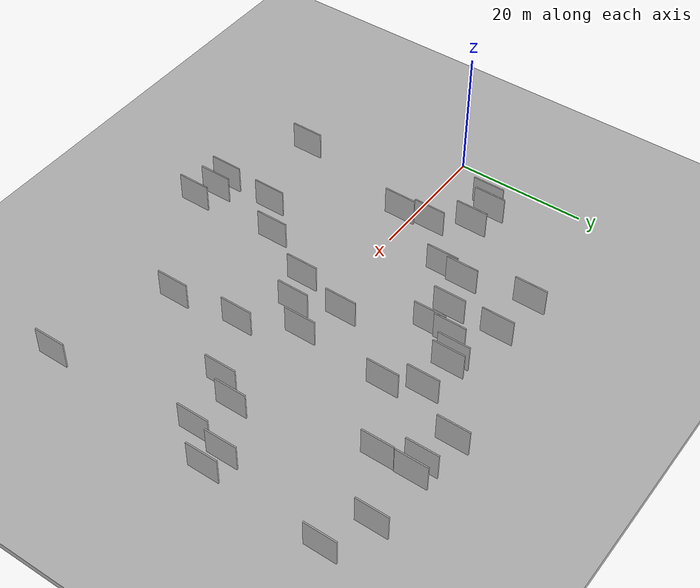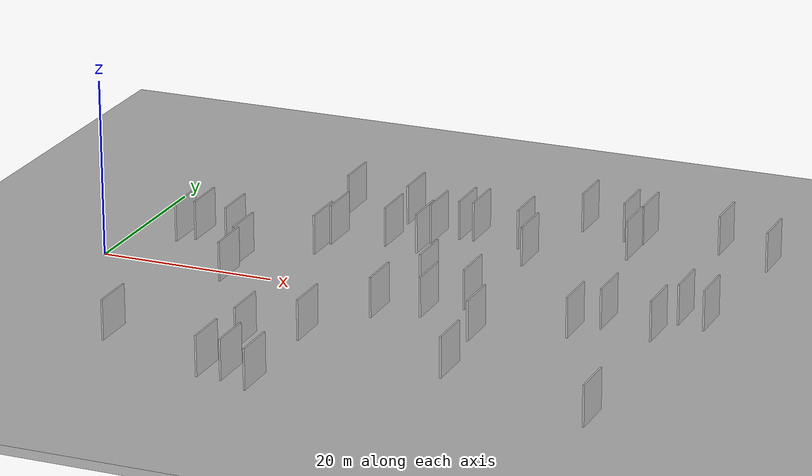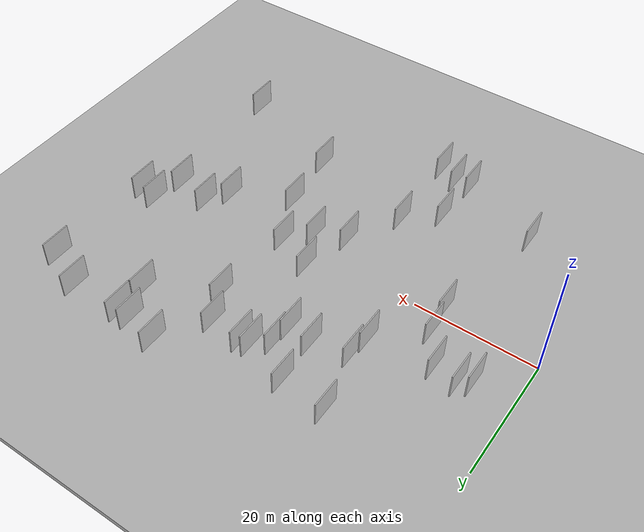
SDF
<?xml version="1.0" encoding="utf-8"?>

<sdf version="1.6">

   <world name="default">

      <gui fullscreen="0">

         <camera name="user_camera">

            <pose>-15 0 4.57585 0 0 0</pose>

            <view_controller>orbit</view_controller>

         </camera>

      </gui>

      <scene>

         <sky>

           <clouds>

             <speed>12</speed>

           </clouds>

         </sky>

         <ambient>0.4 0.4 0.4 1</ambient>

         <background>0.7 0.7 0.7 1</background>

         <shadows>1</shadows>

      </scene>

      <gravity>0 0 -9.8066</gravity>

      <magnetic_field>6e-06 2.3e-05 -4.2e-05</magnetic_field>

      <physics default="0" name="default_physics" type="ode">

         <ode>

            <solver>

               <type>quick</type>

               <iters>10</iters>

               <sor>1.0</sor>

               <use_dynamic_moi_rescaling>0</use_dynamic_moi_rescaling>

            </solver>

            <constraints>

               <cfm>0</cfm>

               <erp>0.2</erp>

               <contact_max_correcting_vel>100</contact_max_correcting_vel>

               <contact_surface_layer>0.001</contact_surface_layer>

            </constraints>

         </ode>

         <max_step_size>0.004</max_step_size>

         <real_time_factor>1</real_time_factor>

         <real_time_update_rate>250</real_time_update_rate>

      </physics>

      <light name="sun" type="directional">

         <cast_shadows>1</cast_shadows>

         <pose>0 0 10 0 0 0</pose>

         <diffuse>0.8 0.8 0.8 1</diffuse>

         <specular>0.2 0.2 0.2 1</specular>

         <attenuation>

            <range>1000</range>

            <constant>0.9</constant>

            <linear>0.01</linear>

            <quadratic>0.001</quadratic>

         </attenuation>

         <direction>-0.5 0.1 -0.9</direction>

      </light>

      <include>

         <name>ground_plane_1</name>

         <uri>model://HANNAS_ground_plane</uri>

         <pose>0 0 0  0 0 0</pose>

      </include>

      <include>

         <name>ground_plane_2</name>

         <uri>model://HANNAS_ground_plane</uri>

         <pose>100 0 0  0 0 0</pose>

      </include>

      <model name="HANNAS_wall_1">

         <static>1</static>

         <pose frame="">22.2892 13.5258 0.0 0.000000 0.000000 1.570796</pose>

         <link name="link">

            <pose frame="">0 0 2.50 0 0 0</pose>

            <collision name="collision">

               <geometry>

                  <box>

                     <size>5.00 0.2 5.00</size>

                  </box>

               </geometry>

               <max_contacts>10</max_contacts>

               <surface>

                  <contact>

                     <ode/>

                  </contact>

                  <bounce/>

                  <friction>

                     <torsional>

                        <ode/>

                     </torsional>

                     <ode/>

                  </friction>

               </surface>

            </collision>

            <visual name="visual">

               <cast_shadows>0</cast_shadows>

               <geometry>

                  <box>

                     <size>5.00 0.2 5.00</size>

                  </box>

               </geometry>

               <material>

                  <script>

                     <uri>model://HANNAS_wall/materials/scripts</uri>

                     <uri>model://HANNAS_wall/materials/textures</uri>

                     <name>vrc/HANNAS_wall</name>

                  </script>

               </material>

            </visual>

            <self_collide>0</self_collide>

            <enable_wind>0</enable_wind>

            <kinematic>0</kinematic>

         </link>

      </model>

      <model name="HANNAS_wall_2">

         <static>1</static>

         <pose frame="">34.9299 -4.7741 0.0 0.000000 0.000000 1.570796</pose>

         <link name="link">

            <pose frame="">0 0 2.50 0 0 0</pose>

            <collision name="collision">

               <geometry>

                  <box>

                     <size>5.00 0.2 5.00</size>

                  </box>

               </geometry>

               <max_contacts>10</max_contacts>

               <surface>

                  <contact>

                     <ode/>

                  </contact>

                  <bounce/>

                  <friction>

                     <torsional>

                        <ode/>

                     </torsional>

                     <ode/>

                  </friction>

               </surface>

            </collision>

            <visual name="visual">

               <cast_shadows>0</cast_shadows>

               <geometry>

                  <box>

                     <size>5.00 0.2 5.00</size>

                  </box>

               </geometry>

               <material>

                  <script>

                     <uri>model://HANNAS_wall/materials/scripts</uri>

                     <uri>model://HANNAS_wall/materials/textures</uri>

                     <name>vrc/HANNAS_wall</name>

                  </script>

               </material>

            </visual>

            <self_collide>0</self_collide>

            <enable_wind>0</enable_wind>

            <kinematic>0</kinematic>

         </link>

      </model>

      <model name="HANNAS_wall_3">

         <static>1</static>

         <pose frame="">58.4555 1.3691 0.0 0.000000 0.000000 1.570796</pose>

         <link name="link">

            <pose frame="">0 0 2.50 0 0 0</pose>

            <collision name="collision">

               <geometry>

                  <box>

                     <size>5.00 0.2 5.00</size>

                  </box>

               </geometry>

               <max_contacts>10</max_contacts>

               <surface>

                  <contact>

                     <ode/>

                  </contact>

                  <bounce/>

                  <friction>

                     <torsional>

                        <ode/>

                     </torsional>

                     <ode/>

                  </friction>

               </surface>

            </collision>

            <visual name="visual">

               <cast_shadows>0</cast_shadows>

               <geometry>

                  <box>

                     <size>5.00 0.2 5.00</size>

                  </box>

               </geometry>

               <material>

                  <script>

                     <uri>model://HANNAS_wall/materials/scripts</uri>

                     <uri>model://HANNAS_wall/materials/textures</uri>

                     <name>vrc/HANNAS_wall</name>

                  </script>

               </material>

            </visual>

            <self_collide>0</self_collide>

            <enable_wind>0</enable_wind>

            <kinematic>0</kinematic>

         </link>

      </model>

      <model name="HANNAS_wall_4">

         <static>1</static>

         <pose frame="">34.9084 20.2041 0.0 0.000000 0.000000 1.570796</pose>

         <link name="link">

            <pose frame="">0 0 2.50 0 0 0</pose>

            <collision name="collision">

               <geometry>

                  <box>

                     <size>5.00 0.2 5.00</size>

                  </box>

               </geometry>

               <max_contacts>10</max_contacts>

               <surface>

                  <contact>

                     <ode/>

                  </contact>

                  <bounce/>

                  <friction>

                     <torsional>

                        <ode/>

                     </torsional>

                     <ode/>

                  </friction>

               </surface>

            </collision>

            <visual name="visual">

               <cast_shadows>0</cast_shadows>

               <geometry>

                  <box>

                     <size>5.00 0.2 5.00</size>

                  </box>

               </geometry>

               <material>

                  <script>

                     <uri>model://HANNAS_wall/materials/scripts</uri>

                     <uri>model://HANNAS_wall/materials/textures</uri>

                     <name>vrc/HANNAS_wall</name>

                  </script>

               </material>

            </visual>

            <self_collide>0</self_collide>

            <enable_wind>0</enable_wind>

            <kinematic>0</kinematic>

         </link>

      </model>

      <model name="HANNAS_wall_5">

         <static>1</static>

         <pose frame="">11.7542 -21.0241 0.0 0.000000 0.000000 1.570796</pose>

         <link name="link">

            <pose frame="">0 0 2.50 0 0 0</pose>

            <collision name="collision">

               <geometry>

                  <box>

                     <size>5.00 0.2 5.00</size>

                  </box>

               </geometry>

               <max_contacts>10</max_contacts>

               <surface>

                  <contact>

                     <ode/>

                  </contact>

                  <bounce/>

                  <friction>

                     <torsional>

                        <ode/>

                     </torsional>

                     <ode/>

                  </friction>

               </surface>

            </collision>

            <visual name="visual">

               <cast_shadows>0</cast_shadows>

               <geometry>

                  <box>

                     <size>5.00 0.2 5.00</size>

                  </box>

               </geometry>

               <material>

                  <script>

                     <uri>model://HANNAS_wall/materials/scripts</uri>

                     <uri>model://HANNAS_wall/materials/textures</uri>

                     <name>vrc/HANNAS_wall</name>

                  </script>

               </material>

            </visual>

            <self_collide>0</self_collide>

            <enable_wind>0</enable_wind>

            <kinematic>0</kinematic>

         </link>

      </model>

      <model name="HANNAS_wall_6">

         <static>1</static>

         <pose frame="">11.8552 8.5519 0.0 0.000000 0.000000 1.570796</pose>

         <link name="link">

            <pose frame="">0 0 2.50 0 0 0</pose>

            <collision name="collision">

               <geometry>

                  <box>

                     <size>5.00 0.2 5.00</size>

                  </box>

               </geometry>

               <max_contacts>10</max_contacts>

               <surface>

                  <contact>

                     <ode/>

                  </contact>

                  <bounce/>

                  <friction>

                     <torsional>

                        <ode/>

                     </torsional>

                     <ode/>

                  </friction>

               </surface>

            </collision>

            <visual name="visual">

               <cast_shadows>0</cast_shadows>

               <geometry>

                  <box>

                     <size>5.00 0.2 5.00</size>

                  </box>

               </geometry>

               <material>

                  <script>

                     <uri>model://HANNAS_wall/materials/scripts</uri>

                     <uri>model://HANNAS_wall/materials/textures</uri>

                     <name>vrc/HANNAS_wall</name>

                  </script>

               </material>

            </visual>

            <self_collide>0</self_collide>

            <enable_wind>0</enable_wind>

            <kinematic>0</kinematic>

         </link>

      </model>

      <model name="HANNAS_wall_7">

         <static>1</static>

         <pose frame="">68.5412 4.9635 0.0 0.000000 0.000000 1.570796</pose>

         <link name="link">

            <pose frame="">0 0 2.50 0 0 0</pose>

            <collision name="collision">

               <geometry>

                  <box>

                     <size>5.00 0.2 5.00</size>

                  </box>

               </geometry>

               <max_contacts>10</max_contacts>

               <surface>

                  <contact>

                     <ode/>

                  </contact>

                  <bounce/>

                  <friction>

                     <torsional>

                        <ode/>

                     </torsional>

                     <ode/>

                  </friction>

               </surface>

            </collision>

            <visual name="visual">

               <cast_shadows>0</cast_shadows>

               <geometry>

                  <box>

                     <size>5.00 0.2 5.00</size>

                  </box>

               </geometry>

               <material>

                  <script>

                     <uri>model://HANNAS_wall/materials/scripts</uri>

                     <uri>model://HANNAS_wall/materials/textures</uri>

                     <name>vrc/HANNAS_wall</name>

                  </script>

               </material>

            </visual>

            <self_collide>0</self_collide>

            <enable_wind>0</enable_wind>

            <kinematic>0</kinematic>

         </link>

      </model>

      <model name="HANNAS_wall_8">

         <static>1</static>

         <pose frame="">30.9547 -27.4982 0.0 0.000000 0.000000 1.570796</pose>

         <link name="link">

            <pose frame="">0 0 2.50 0 0 0</pose>

            <collision name="collision">

               <geometry>

                  <box>

                     <size>5.00 0.2 5.00</size>

                  </box>

               </geometry>

               <max_contacts>10</max_contacts>

               <surface>

                  <contact>

                     <ode/>

                  </contact>

                  <bounce/>

                  <friction>

                     <torsional>

                        <ode/>

                     </torsional>

                     <ode/>

                  </friction>

               </surface>

            </collision>

            <visual name="visual">

               <cast_shadows>0</cast_shadows>

               <geometry>

                  <box>

                     <size>5.00 0.2 5.00</size>

                  </box>

               </geometry>

               <material>

                  <script>

                     <uri>model://HANNAS_wall/materials/scripts</uri>

                     <uri>model://HANNAS_wall/materials/textures</uri>

                     <name>vrc/HANNAS_wall</name>

                  </script>

               </material>

            </visual>

            <self_collide>0</self_collide>

            <enable_wind>0</enable_wind>

            <kinematic>0</kinematic>

         </link>

      </model>

      <model name="HANNAS_wall_9">

         <static>1</static>

         <pose frame="">63.0214 26.6160 0.0 0.000000 0.000000 1.570796</pose>

         <link name="link">

            <pose frame="">0 0 2.50 0 0 0</pose>

            <collision name="collision">

               <geometry>

                  <box>

                     <size>5.00 0.2 5.00</size>

                  </box>

               </geometry>

               <max_contacts>10</max_contacts>

               <surface>

                  <contact>

                     <ode/>

                  </contact>

                  <bounce/>

                  <friction>

                     <torsional>

                        <ode/>

                     </torsional>

                     <ode/>

                  </friction>

               </surface>

            </collision>

            <visual name="visual">

               <cast_shadows>0</cast_shadows>

               <geometry>

                  <box>

                     <size>5.00 0.2 5.00</size>

                  </box>

               </geometry>

               <material>

                  <script>

                     <uri>model://HANNAS_wall/materials/scripts</uri>

                     <uri>model://HANNAS_wall/materials/textures</uri>

                     <name>vrc/HANNAS_wall</name>

                  </script>

               </material>

            </visual>

            <self_collide>0</self_collide>

            <enable_wind>0</enable_wind>

            <kinematic>0</kinematic>

         </link>

      </model>

      <model name="HANNAS_wall_10">

         <static>1</static>

         <pose frame="">69.4249 23.6477 0.0 0.000000 0.000000 1.570796</pose>

         <link name="link">

            <pose frame="">0 0 2.50 0 0 0</pose>

            <collision name="collision">

               <geometry>

                  <box>

                     <size>5.00 0.2 5.00</size>

                  </box>

               </geometry>

               <max_contacts>10</max_contacts>

               <surface>

                  <contact>

                     <ode/>

                  </contact>

                  <bounce/>

                  <friction>

                     <torsional>

                        <ode/>

                     </torsional>

                     <ode/>

                  </friction>

               </surface>

            </collision>

            <visual name="visual">

               <cast_shadows>0</cast_shadows>

               <geometry>

                  <box>

                     <size>5.00 0.2 5.00</size>

                  </box>

               </geometry>

               <material>

                  <script>

                     <uri>model://HANNAS_wall/materials/scripts</uri>

                     <uri>model://HANNAS_wall/materials/textures</uri>

                     <name>vrc/HANNAS_wall</name>

                  </script>

               </material>

            </visual>

            <self_collide>0</self_collide>

            <enable_wind>0</enable_wind>

            <kinematic>0</kinematic>

         </link>

      </model>

      <model name="HANNAS_wall_11">

         <static>1</static>

         <pose frame="">15.2045 3.4763 0.0 0.000000 0.000000 1.570796</pose>

         <link name="link">

            <pose frame="">0 0 2.50 0 0 0</pose>

            <collision name="collision">

               <geometry>

                  <box>

                     <size>5.00 0.2 5.00</size>

                  </box>

               </geometry>

               <max_contacts>10</max_contacts>

               <surface>

                  <contact>

                     <ode/>

                  </contact>

                  <bounce/>

                  <friction>

                     <torsional>

                        <ode/>

                     </torsional>

                     <ode/>

                  </friction>

               </surface>

            </collision>

            <visual name="visual">

               <cast_shadows>0</cast_shadows>

               <geometry>

                  <box>

                     <size>5.00 0.2 5.00</size>

                  </box>

               </geometry>

               <material>

                  <script>

                     <uri>model://HANNAS_wall/materials/scripts</uri>

                     <uri>model://HANNAS_wall/materials/textures</uri>

                     <name>vrc/HANNAS_wall</name>

                  </script>

               </material>

            </visual>

            <self_collide>0</self_collide>

            <enable_wind>0</enable_wind>

            <kinematic>0</kinematic>

         </link>

      </model>

      <model name="HANNAS_wall_12">

         <static>1</static>

         <pose frame="">36.4963 20.4069 0.0 0.000000 0.000000 1.570796</pose>

         <link name="link">

            <pose frame="">0 0 2.50 0 0 0</pose>

            <collision name="collision">

               <geometry>

                  <box>

                     <size>5.00 0.2 5.00</size>

                  </box>

               </geometry>

               <max_contacts>10</max_contacts>

               <surface>

                  <contact>

                     <ode/>

                  </contact>

                  <bounce/>

                  <friction>

                     <torsional>

                        <ode/>

                     </torsional>

                     <ode/>

                  </friction>

               </surface>

            </collision>

            <visual name="visual">

               <cast_shadows>0</cast_shadows>

               <geometry>

                  <box>

                     <size>5.00 0.2 5.00</size>

                  </box>

               </geometry>

               <material>

                  <script>

                     <uri>model://HANNAS_wall/materials/scripts</uri>

                     <uri>model://HANNAS_wall/materials/textures</uri>

                     <name>vrc/HANNAS_wall</name>

                  </script>

               </material>

            </visual>

            <self_collide>0</self_collide>

            <enable_wind>0</enable_wind>

            <kinematic>0</kinematic>

         </link>

      </model>

      <model name="HANNAS_wall_13">

         <static>1</static>

         <pose frame="">27.6960 22.5972 0.0 0.000000 0.000000 1.570796</pose>

         <link name="link">

            <pose frame="">0 0 2.50 0 0 0</pose>

            <collision name="collision">

               <geometry>

                  <box>

                     <size>5.00 0.2 5.00</size>

                  </box>

               </geometry>

               <max_contacts>10</max_contacts>

               <surface>

                  <contact>

                     <ode/>

                  </contact>

                  <bounce/>

                  <friction>

                     <torsional>

                        <ode/>

                     </torsional>

                     <ode/>

                  </friction>

               </surface>

            </collision>

            <visual name="visual">

               <cast_shadows>0</cast_shadows>

               <geometry>

                  <box>

                     <size>5.00 0.2 5.00</size>

                  </box>

               </geometry>

               <material>

                  <script>

                     <uri>model://HANNAS_wall/materials/scripts</uri>

                     <uri>model://HANNAS_wall/materials/textures</uri>

                     <name>vrc/HANNAS_wall</name>

                  </script>

               </material>

            </visual>

            <self_collide>0</self_collide>

            <enable_wind>0</enable_wind>

            <kinematic>0</kinematic>

         </link>

      </model>

      <model name="HANNAS_wall_14">

         <static>1</static>

         <pose frame="">44.2253 15.2377 0.0 0.000000 0.000000 1.570796</pose>

         <link name="link">

            <pose frame="">0 0 2.50 0 0 0</pose>

            <collision name="collision">

               <geometry>

                  <box>

                     <size>5.00 0.2 5.00</size>

                  </box>

               </geometry>

               <max_contacts>10</max_contacts>

               <surface>

                  <contact>

                     <ode/>

                  </contact>

                  <bounce/>

                  <friction>

                     <torsional>

                        <ode/>

                     </torsional>

                     <ode/>

                  </friction>

               </surface>

            </collision>

            <visual name="visual">

               <cast_shadows>0</cast_shadows>

               <geometry>

                  <box>

                     <size>5.00 0.2 5.00</size>

                  </box>

               </geometry>

               <material>

                  <script>

                     <uri>model://HANNAS_wall/materials/scripts</uri>

                     <uri>model://HANNAS_wall/materials/textures</uri>

                     <name>vrc/HANNAS_wall</name>

                  </script>

               </material>

            </visual>

            <self_collide>0</self_collide>

            <enable_wind>0</enable_wind>

            <kinematic>0</kinematic>

         </link>

      </model>

      <model name="HANNAS_wall_15">

         <static>1</static>

         <pose frame="">52.0153 26.5191 0.0 0.000000 0.000000 1.570796</pose>

         <link name="link">

            <pose frame="">0 0 2.50 0 0 0</pose>

            <collision name="collision">

               <geometry>

                  <box>

                     <size>5.00 0.2 5.00</size>

                  </box>

               </geometry>

               <max_contacts>10</max_contacts>

               <surface>

                  <contact>

                     <ode/>

                  </contact>

                  <bounce/>

                  <friction>

                     <torsional>

                        <ode/>

                     </torsional>

                     <ode/>

                  </friction>

               </surface>

            </collision>

            <visual name="visual">

               <cast_shadows>0</cast_shadows>

               <geometry>

                  <box>

                     <size>5.00 0.2 5.00</size>

                  </box>

               </geometry>

               <material>

                  <script>

                     <uri>model://HANNAS_wall/materials/scripts</uri>

                     <uri>model://HANNAS_wall/materials/textures</uri>

                     <name>vrc/HANNAS_wall</name>

                  </script>

               </material>

            </visual>

            <self_collide>0</self_collide>

            <enable_wind>0</enable_wind>

            <kinematic>0</kinematic>

         </link>

      </model>

      <model name="HANNAS_wall_16">

         <static>1</static>

         <pose frame="">56.0244 -2.2311 0.0 0.000000 0.000000 1.570796</pose>

         <link name="link">

            <pose frame="">0 0 2.50 0 0 0</pose>

            <collision name="collision">

               <geometry>

                  <box>

                     <size>5.00 0.2 5.00</size>

                  </box>

               </geometry>

               <max_contacts>10</max_contacts>

               <surface>

                  <contact>

                     <ode/>

                  </contact>

                  <bounce/>

                  <friction>

                     <torsional>

                        <ode/>

                     </torsional>

                     <ode/>

                  </friction>

               </surface>

            </collision>

            <visual name="visual">

               <cast_shadows>0</cast_shadows>

               <geometry>

                  <box>

                     <size>5.00 0.2 5.00</size>

                  </box>

               </geometry>

               <material>

                  <script>

                     <uri>model://HANNAS_wall/materials/scripts</uri>

                     <uri>model://HANNAS_wall/materials/textures</uri>

                     <name>vrc/HANNAS_wall</name>

                  </script>

               </material>

            </visual>

            <self_collide>0</self_collide>

            <enable_wind>0</enable_wind>

            <kinematic>0</kinematic>

         </link>

      </model>

      <model name="HANNAS_wall_17">

         <static>1</static>

         <pose frame="">54.2499 26.4378 0.0 0.000000 0.000000 1.570796</pose>

         <link name="link">

            <pose frame="">0 0 2.50 0 0 0</pose>

            <collision name="collision">

               <geometry>

                  <box>

                     <size>5.00 0.2 5.00</size>

                  </box>

               </geometry>

               <max_contacts>10</max_contacts>

               <surface>

                  <contact>

                     <ode/>

                  </contact>

                  <bounce/>

                  <friction>

                     <torsional>

                        <ode/>

                     </torsional>

                     <ode/>

                  </friction>

               </surface>

            </collision>

            <visual name="visual">

               <cast_shadows>0</cast_shadows>

               <geometry>

                  <box>

                     <size>5.00 0.2 5.00</size>

                  </box>

               </geometry>

               <material>

                  <script>

                     <uri>model://HANNAS_wall/materials/scripts</uri>

                     <uri>model://HANNAS_wall/materials/textures</uri>

                     <name>vrc/HANNAS_wall</name>

                  </script>

               </material>

            </visual>

            <self_collide>0</self_collide>

            <enable_wind>0</enable_wind>

            <kinematic>0</kinematic>

         </link>

      </model>

      <model name="HANNAS_wall_18">

         <static>1</static>

         <pose frame="">20.1541 23.2814 0.0 0.000000 0.000000 1.570796</pose>

         <link name="link">

            <pose frame="">0 0 2.50 0 0 0</pose>

            <collision name="collision">

               <geometry>

                  <box>

                     <size>5.00 0.2 5.00</size>

                  </box>

               </geometry>

               <max_contacts>10</max_contacts>

               <surface>

                  <contact>

                     <ode/>

                  </contact>

                  <bounce/>

                  <friction>

                     <torsional>

                        <ode/>

                     </torsional>

                     <ode/>

                  </friction>

               </surface>

            </collision>

            <visual name="visual">

               <cast_shadows>0</cast_shadows>

               <geometry>

                  <box>

                     <size>5.00 0.2 5.00</size>

                  </box>

               </geometry>

               <material>

                  <script>

                     <uri>model://HANNAS_wall/materials/scripts</uri>

                     <uri>model://HANNAS_wall/materials/textures</uri>

                     <name>vrc/HANNAS_wall</name>

                  </script>

               </material>

            </visual>

            <self_collide>0</self_collide>

            <enable_wind>0</enable_wind>

            <kinematic>0</kinematic>

         </link>

      </model>

      <model name="HANNAS_wall_19">

         <static>1</static>

         <pose frame="">25.4175 -17.8386 0.0 0.000000 0.000000 1.570796</pose>

         <link name="link">

            <pose frame="">0 0 2.50 0 0 0</pose>

            <collision name="collision">

               <geometry>

                  <box>

                     <size>5.00 0.2 5.00</size>

                  </box>

               </geometry>

               <max_contacts>10</max_contacts>

               <surface>

                  <contact>

                     <ode/>

                  </contact>

                  <bounce/>

                  <friction>

                     <torsional>

                        <ode/>

                     </torsional>

                     <ode/>

                  </friction>

               </surface>

            </collision>

            <visual name="visual">

               <cast_shadows>0</cast_shadows>

               <geometry>

                  <box>

                     <size>5.00 0.2 5.00</size>

                  </box>

               </geometry>

               <material>

                  <script>

                     <uri>model://HANNAS_wall/materials/scripts</uri>

                     <uri>model://HANNAS_wall/materials/textures</uri>

                     <name>vrc/HANNAS_wall</name>

                  </script>

               </material>

            </visual>

            <self_collide>0</self_collide>

            <enable_wind>0</enable_wind>

            <kinematic>0</kinematic>

         </link>

      </model>

      <model name="HANNAS_wall_20">

         <static>1</static>

         <pose frame="">32.1007 14.5921 0.0 0.000000 0.000000 1.570796</pose>

         <link name="link">

            <pose frame="">0 0 2.50 0 0 0</pose>

            <collision name="collision">

               <geometry>

                  <box>

                     <size>5.00 0.2 5.00</size>

                  </box>

               </geometry>

               <max_contacts>10</max_contacts>

               <surface>

                  <contact>

                     <ode/>

                  </contact>

                  <bounce/>

                  <friction>

                     <torsional>

                        <ode/>

                     </torsional>

                     <ode/>

                  </friction>

               </surface>

            </collision>

            <visual name="visual">

               <cast_shadows>0</cast_shadows>

               <geometry>

                  <box>

                     <size>5.00 0.2 5.00</size>

                  </box>

               </geometry>

               <material>

                  <script>

                     <uri>model://HANNAS_wall/materials/scripts</uri>

                     <uri>model://HANNAS_wall/materials/textures</uri>

                     <name>vrc/HANNAS_wall</name>

                  </script>

               </material>

            </visual>

            <self_collide>0</self_collide>

            <enable_wind>0</enable_wind>

            <kinematic>0</kinematic>

         </link>

      </model>

      <model name="HANNAS_wall_21">

         <static>1</static>

         <pose frame="">64.3960 0.1001 0.0 0.000000 0.000000 1.570796</pose>

         <link name="link">

            <pose frame="">0 0 2.50 0 0 0</pose>

            <collision name="collision">

               <geometry>

                  <box>

                     <size>5.00 0.2 5.00</size>

                  </box>

               </geometry>

               <max_contacts>10</max_contacts>

               <surface>

                  <contact>

                     <ode/>

                  </contact>

                  <bounce/>

                  <friction>

                     <torsional>

                        <ode/>

                     </torsional>

                     <ode/>

                  </friction>

               </surface>

            </collision>

            <visual name="visual">

               <cast_shadows>0</cast_shadows>

               <geometry>

                  <box>

                     <size>5.00 0.2 5.00</size>

                  </box>

               </geometry>

               <material>

                  <script>

                     <uri>model://HANNAS_wall/materials/scripts</uri>

                     <uri>model://HANNAS_wall/materials/textures</uri>

                     <name>vrc/HANNAS_wall</name>

                  </script>

               </material>

            </visual>

            <self_collide>0</self_collide>

            <enable_wind>0</enable_wind>

            <kinematic>0</kinematic>

         </link>

      </model>

      <model name="HANNAS_wall_22">

         <static>1</static>

         <pose frame="">28.1065 15.2084 0.0 0.000000 0.000000 1.570796</pose>

         <link name="link">

            <pose frame="">0 0 2.50 0 0 0</pose>

            <collision name="collision">

               <geometry>

                  <box>

                     <size>5.00 0.2 5.00</size>

                  </box>

               </geometry>

               <max_contacts>10</max_contacts>

               <surface>

                  <contact>

                     <ode/>

                  </contact>

                  <bounce/>

                  <friction>

                     <torsional>

                        <ode/>

                     </torsional>

                     <ode/>

                  </friction>

               </surface>

            </collision>

            <visual name="visual">

               <cast_shadows>0</cast_shadows>

               <geometry>

                  <box>

                     <size>5.00 0.2 5.00</size>

                  </box>

               </geometry>

               <material>

                  <script>

                     <uri>model://HANNAS_wall/materials/scripts</uri>

                     <uri>model://HANNAS_wall/materials/textures</uri>

                     <name>vrc/HANNAS_wall</name>

                  </script>

               </material>

            </visual>

            <self_collide>0</self_collide>

            <enable_wind>0</enable_wind>

            <kinematic>0</kinematic>

         </link>

      </model>

      <model name="HANNAS_wall_23">

         <static>1</static>

         <pose frame="">15.7142 -1.2883 0.0 0.000000 0.000000 1.570796</pose>

         <link name="link">

            <pose frame="">0 0 2.50 0 0 0</pose>

            <collision name="collision">

               <geometry>

                  <box>

                     <size>5.00 0.2 5.00</size>

                  </box>

               </geometry>

               <max_contacts>10</max_contacts>

               <surface>

                  <contact>

                     <ode/>

                  </contact>

                  <bounce/>

                  <friction>

                     <torsional>

                        <ode/>

                     </torsional>

                     <ode/>

                  </friction>

               </surface>

            </collision>

            <visual name="visual">

               <cast_shadows>0</cast_shadows>

               <geometry>

                  <box>

                     <size>5.00 0.2 5.00</size>

                  </box>

               </geometry>

               <material>

                  <script>

                     <uri>model://HANNAS_wall/materials/scripts</uri>

                     <uri>model://HANNAS_wall/materials/textures</uri>

                     <name>vrc/HANNAS_wall</name>

                  </script>

               </material>

            </visual>

            <self_collide>0</self_collide>

            <enable_wind>0</enable_wind>

            <kinematic>0</kinematic>

         </link>

      </model>

      <model name="HANNAS_wall_24">

         <static>1</static>

         <pose frame="">41.9377 20.0120 0.0 0.000000 0.000000 1.570796</pose>

         <link name="link">

            <pose frame="">0 0 2.50 0 0 0</pose>

            <collision name="collision">

               <geometry>

                  <box>

                     <size>5.00 0.2 5.00</size>

                  </box>

               </geometry>

               <max_contacts>10</max_contacts>

               <surface>

                  <contact>

                     <ode/>

                  </contact>

                  <bounce/>

                  <friction>

                     <torsional>

                        <ode/>

                     </torsional>

                     <ode/>

                  </friction>

               </surface>

            </collision>

            <visual name="visual">

               <cast_shadows>0</cast_shadows>

               <geometry>

                  <box>

                     <size>5.00 0.2 5.00</size>

                  </box>

               </geometry>

               <material>

                  <script>

                     <uri>model://HANNAS_wall/materials/scripts</uri>

                     <uri>model://HANNAS_wall/materials/textures</uri>

                     <name>vrc/HANNAS_wall</name>

                  </script>

               </material>

            </visual>

            <self_collide>0</self_collide>

            <enable_wind>0</enable_wind>

            <kinematic>0</kinematic>

         </link>

      </model>

      <model name="HANNAS_wall_25">

         <static>1</static>

         <pose frame="">47.9875 -17.1669 0.0 0.000000 0.000000 1.570796</pose>

         <link name="link">

            <pose frame="">0 0 2.50 0 0 0</pose>

            <collision name="collision">

               <geometry>

                  <box>

                     <size>5.00 0.2 5.00</size>

                  </box>

               </geometry>

               <max_contacts>10</max_contacts>

               <surface>

                  <contact>

                     <ode/>

                  </contact>

                  <bounce/>

                  <friction>

                     <torsional>

                        <ode/>

                     </torsional>

                     <ode/>

                  </friction>

               </surface>

            </collision>

            <visual name="visual">

               <cast_shadows>0</cast_shadows>

               <geometry>

                  <box>

                     <size>5.00 0.2 5.00</size>

                  </box>

               </geometry>

               <material>

                  <script>

                     <uri>model://HANNAS_wall/materials/scripts</uri>

                     <uri>model://HANNAS_wall/materials/textures</uri>

                     <name>vrc/HANNAS_wall</name>

                  </script>

               </material>

            </visual>

            <self_collide>0</self_collide>

            <enable_wind>0</enable_wind>

            <kinematic>0</kinematic>

         </link>

      </model>

      <model name="HANNAS_wall_26">

         <static>1</static>

         <pose frame="">65.5455 5.5402 0.0 0.000000 0.000000 1.570796</pose>

         <link name="link">

            <pose frame="">0 0 2.50 0 0 0</pose>

            <collision name="collision">

               <geometry>

                  <box>

                     <size>5.00 0.2 5.00</size>

                  </box>

               </geometry>

               <max_contacts>10</max_contacts>

               <surface>

                  <contact>

                     <ode/>

                  </contact>

                  <bounce/>

                  <friction>

                     <torsional>

                        <ode/>

                     </torsional>

                     <ode/>

                  </friction>

               </surface>

            </collision>

            <visual name="visual">

               <cast_shadows>0</cast_shadows>

               <geometry>

                  <box>

                     <size>5.00 0.2 5.00</size>

                  </box>

               </geometry>

               <material>

                  <script>

                     <uri>model://HANNAS_wall/materials/scripts</uri>

                     <uri>model://HANNAS_wall/materials/textures</uri>

                     <name>vrc/HANNAS_wall</name>

                  </script>

               </material>

            </visual>

            <self_collide>0</self_collide>

            <enable_wind>0</enable_wind>

            <kinematic>0</kinematic>

         </link>

      </model>

      <model name="HANNAS_wall_27">

         <static>1</static>

         <pose frame="">46.8110 -6.9760 0.0 0.000000 0.000000 1.570796</pose>

         <link name="link">

            <pose frame="">0 0 2.50 0 0 0</pose>

            <collision name="collision">

               <geometry>

                  <box>

                     <size>5.00 0.2 5.00</size>

                  </box>

               </geometry>

               <max_contacts>10</max_contacts>

               <surface>

                  <contact>

                     <ode/>

                  </contact>

                  <bounce/>

                  <friction>

                     <torsional>

                        <ode/>

                     </torsional>

                     <ode/>

                  </friction>

               </surface>

            </collision>

            <visual name="visual">

               <cast_shadows>0</cast_shadows>

               <geometry>

                  <box>

                     <size>5.00 0.2 5.00</size>

                  </box>

               </geometry>

               <material>

                  <script>

                     <uri>model://HANNAS_wall/materials/scripts</uri>

                     <uri>model://HANNAS_wall/materials/textures</uri>

                     <name>vrc/HANNAS_wall</name>

                  </script>

               </material>

            </visual>

            <self_collide>0</self_collide>

            <enable_wind>0</enable_wind>

            <kinematic>0</kinematic>

         </link>

      </model>

      <model name="HANNAS_wall_28">

         <static>1</static>

         <pose frame="">24.9807 -26.2016 0.0 0.000000 0.000000 1.570796</pose>

         <link name="link">

            <pose frame="">0 0 2.50 0 0 0</pose>

            <collision name="collision">

               <geometry>

                  <box>

                     <size>5.00 0.2 5.00</size>

                  </box>

               </geometry>

               <max_contacts>10</max_contacts>

               <surface>

                  <contact>

                     <ode/>

                  </contact>

                  <bounce/>

                  <friction>

                     <torsional>

                        <ode/>

                     </torsional>

                     <ode/>

                  </friction>

               </surface>

            </collision>

            <visual name="visual">

               <cast_shadows>0</cast_shadows>

               <geometry>

                  <box>

                     <size>5.00 0.2 5.00</size>

                  </box>

               </geometry>

               <material>

                  <script>

                     <uri>model://HANNAS_wall/materials/scripts</uri>

                     <uri>model://HANNAS_wall/materials/textures</uri>

                     <name>vrc/HANNAS_wall</name>

                  </script>

               </material>

            </visual>

            <self_collide>0</self_collide>

            <enable_wind>0</enable_wind>

            <kinematic>0</kinematic>

         </link>

      </model>

      <model name="HANNAS_wall_29">

         <static>1</static>

         <pose frame="">32.3760 17.9821 0.0 0.000000 0.000000 1.570796</pose>

         <link name="link">

            <pose frame="">0 0 2.50 0 0 0</pose>

            <collision name="collision">

               <geometry>

                  <box>

                     <size>5.00 0.2 5.00</size>

                  </box>

               </geometry>

               <max_contacts>10</max_contacts>

               <surface>

                  <contact>

                     <ode/>

                  </contact>

                  <bounce/>

                  <friction>

                     <torsional>

                        <ode/>

                     </torsional>

                     <ode/>

                  </friction>

               </surface>

            </collision>

            <visual name="visual">

               <cast_shadows>0</cast_shadows>

               <geometry>

                  <box>

                     <size>5.00 0.2 5.00</size>

                  </box>

               </geometry>

               <material>

                  <script>

                     <uri>model://HANNAS_wall/materials/scripts</uri>

                     <uri>model://HANNAS_wall/materials/textures</uri>

                     <name>vrc/HANNAS_wall</name>

                  </script>

               </material>

            </visual>

            <self_collide>0</self_collide>

            <enable_wind>0</enable_wind>

            <kinematic>0</kinematic>

         </link>

      </model>

      <model name="HANNAS_wall_30">

         <static>1</static>

         <pose frame="">46.7040 27.6904 0.0 0.000000 0.000000 1.570796</pose>

         <link name="link">

            <pose frame="">0 0 2.50 0 0 0</pose>

            <collision name="collision">

               <geometry>

                  <box>

                     <size>5.00 0.2 5.00</size>

                  </box>

               </geometry>

               <max_contacts>10</max_contacts>

               <surface>

                  <contact>

                     <ode/>

                  </contact>

                  <bounce/>

                  <friction>

                     <torsional>

                        <ode/>

                     </torsional>

                     <ode/>

                  </friction>

               </surface>

            </collision>

            <visual name="visual">

               <cast_shadows>0</cast_shadows>

               <geometry>

                  <box>

                     <size>5.00 0.2 5.00</size>

                  </box>

               </geometry>

               <material>

                  <script>

                     <uri>model://HANNAS_wall/materials/scripts</uri>

                     <uri>model://HANNAS_wall/materials/textures</uri>

                     <name>vrc/HANNAS_wall</name>

                  </script>

               </material>

            </visual>

            <self_collide>0</self_collide>

            <enable_wind>0</enable_wind>

            <kinematic>0</kinematic>

         </link>

      </model>

      <model name="HANNAS_wall_31">

         <static>1</static>

         <pose frame="">43.1915 1.0456 0.0 0.000000 0.000000 1.570796</pose>

         <link name="link">

            <pose frame="">0 0 2.50 0 0 0</pose>

            <collision name="collision">

               <geometry>

                  <box>

                     <size>5.00 0.2 5.00</size>

                  </box>

               </geometry>

               <max_contacts>10</max_contacts>

               <surface>

                  <contact>

                     <ode/>

                  </contact>

                  <bounce/>

                  <friction>

                     <torsional>

                        <ode/>

                     </torsional>

                     <ode/>

                  </friction>

               </surface>

            </collision>

            <visual name="visual">

               <cast_shadows>0</cast_shadows>

               <geometry>

                  <box>

                     <size>5.00 0.2 5.00</size>

                  </box>

               </geometry>

               <material>

                  <script>

                     <uri>model://HANNAS_wall/materials/scripts</uri>

                     <uri>model://HANNAS_wall/materials/textures</uri>

                     <name>vrc/HANNAS_wall</name>

                  </script>

               </material>

            </visual>

            <self_collide>0</self_collide>

            <enable_wind>0</enable_wind>

            <kinematic>0</kinematic>

         </link>

      </model>

      <model name="HANNAS_wall_32">

         <static>1</static>

         <pose frame="">7.8378 9.1253 0.0 0.000000 0.000000 1.570796</pose>

         <link name="link">

            <pose frame="">0 0 2.50 0 0 0</pose>

            <collision name="collision">

               <geometry>

                  <box>

                     <size>5.00 0.2 5.00</size>

                  </box>

               </geometry>

               <max_contacts>10</max_contacts>

               <surface>

                  <contact>

                     <ode/>

                  </contact>

                  <bounce/>

                  <friction>

                     <torsional>

                        <ode/>

                     </torsional>

                     <ode/>

                  </friction>

               </surface>

            </collision>

            <visual name="visual">

               <cast_shadows>0</cast_shadows>

               <geometry>

                  <box>

                     <size>5.00 0.2 5.00</size>

                  </box>

               </geometry>

               <material>

                  <script>

                     <uri>model://HANNAS_wall/materials/scripts</uri>

                     <uri>model://HANNAS_wall/materials/textures</uri>

                     <name>vrc/HANNAS_wall</name>

                  </script>

               </material>

            </visual>

            <self_collide>0</self_collide>

            <enable_wind>0</enable_wind>

            <kinematic>0</kinematic>

         </link>

      </model>

      <model name="HANNAS_wall_33">

         <static>1</static>

         <pose frame="">30.4773 -13.4491 0.0 0.000000 0.000000 1.570796</pose>

         <link name="link">

            <pose frame="">0 0 2.50 0 0 0</pose>

            <collision name="collision">

               <geometry>

                  <box>

                     <size>5.00 0.2 5.00</size>

                  </box>

               </geometry>

               <max_contacts>10</max_contacts>

               <surface>

                  <contact>

                     <ode/>

                  </contact>

                  <bounce/>

                  <friction>

                     <torsional>

                        <ode/>

                     </torsional>

                     <ode/>

                  </friction>

               </surface>

            </collision>

            <visual name="visual">

               <cast_shadows>0</cast_shadows>

               <geometry>

                  <box>

                     <size>5.00 0.2 5.00</size>

                  </box>

               </geometry>

               <material>

                  <script>

                     <uri>model://HANNAS_wall/materials/scripts</uri>

                     <uri>model://HANNAS_wall/materials/textures</uri>

                     <name>vrc/HANNAS_wall</name>

                  </script>

               </material>

            </visual>

            <self_collide>0</self_collide>

            <enable_wind>0</enable_wind>

            <kinematic>0</kinematic>

         </link>

      </model>

      <model name="HANNAS_wall_34">

         <static>1</static>

         <pose frame="">54.1632 21.3199 0.0 0.000000 0.000000 1.570796</pose>

         <link name="link">

            <pose frame="">0 0 2.50 0 0 0</pose>

            <collision name="collision">

               <geometry>

                  <box>

                     <size>5.00 0.2 5.00</size>

                  </box>

               </geometry>

               <max_contacts>10</max_contacts>

               <surface>

                  <contact>

                     <ode/>

                  </contact>

                  <bounce/>

                  <friction>

                     <torsional>

                        <ode/>

                     </torsional>

                     <ode/>

                  </friction>

               </surface>

            </collision>

            <visual name="visual">

               <cast_shadows>0</cast_shadows>

               <geometry>

                  <box>

                     <size>5.00 0.2 5.00</size>

                  </box>

               </geometry>

               <material>

                  <script>

                     <uri>model://HANNAS_wall/materials/scripts</uri>

                     <uri>model://HANNAS_wall/materials/textures</uri>

                     <name>vrc/HANNAS_wall</name>

                  </script>

               </material>

            </visual>

            <self_collide>0</self_collide>

            <enable_wind>0</enable_wind>

            <kinematic>0</kinematic>

         </link>

      </model>

      <model name="HANNAS_wall_35">

         <static>1</static>

         <pose frame="">39.7402 -2.7181 0.0 0.000000 0.000000 1.570796</pose>

         <link name="link">

            <pose frame="">0 0 2.50 0 0 0</pose>

            <collision name="collision">

               <geometry>

                  <box>

                     <size>5.00 0.2 5.00</size>

                  </box>

               </geometry>

               <max_contacts>10</max_contacts>

               <surface>

                  <contact>

                     <ode/>

                  </contact>

                  <bounce/>

                  <friction>

                     <torsional>

                        <ode/>

                     </torsional>

                     <ode/>

                  </friction>

               </surface>

            </collision>

            <visual name="visual">

               <cast_shadows>0</cast_shadows>

               <geometry>

                  <box>

                     <size>5.00 0.2 5.00</size>

                  </box>

               </geometry>

               <material>

                  <script>

                     <uri>model://HANNAS_wall/materials/scripts</uri>

                     <uri>model://HANNAS_wall/materials/textures</uri>

                     <name>vrc/HANNAS_wall</name>

                  </script>

               </material>

            </visual>

            <self_collide>0</self_collide>

            <enable_wind>0</enable_wind>

            <kinematic>0</kinematic>

         </link>

      </model>

      <model name="HANNAS_wall_36">

         <static>1</static>

         <pose frame="">65.6626 -23.3288 0.0 0.000000 0.000000 1.570796</pose>

         <link name="link">

            <pose frame="">0 0 2.50 0 0 0</pose>

            <collision name="collision">

               <geometry>

                  <box>

                     <size>5.00 0.2 5.00</size>

                  </box>

               </geometry>

               <max_contacts>10</max_contacts>

               <surface>

                  <contact>

                     <ode/>

                  </contact>

                  <bounce/>

                  <friction>

                     <torsional>

                        <ode/>

                     </torsional>

                     <ode/>

                  </friction>

               </surface>

            </collision>

            <visual name="visual">

               <cast_shadows>0</cast_shadows>

               <geometry>

                  <box>

                     <size>5.00 0.2 5.00</size>

                  </box>

               </geometry>

               <material>

                  <script>

                     <uri>model://HANNAS_wall/materials/scripts</uri>

                     <uri>model://HANNAS_wall/materials/textures</uri>

                     <name>vrc/HANNAS_wall</name>

                  </script>

               </material>

            </visual>

            <self_collide>0</self_collide>

            <enable_wind>0</enable_wind>

            <kinematic>0</kinematic>

         </link>

      </model>

      <model name="HANNAS_wall_37">

         <static>1</static>

         <pose frame="">27.6588 -26.1446 0.0 0.000000 0.000000 1.570796</pose>

         <link name="link">

            <pose frame="">0 0 2.50 0 0 0</pose>

            <collision name="collision">

               <geometry>

                  <box>

                     <size>5.00 0.2 5.00</size>

                  </box>

               </geometry>

               <max_contacts>10</max_contacts>

               <surface>

                  <contact>

                     <ode/>

                  </contact>

                  <bounce/>

                  <friction>

                     <torsional>

                        <ode/>

                     </torsional>

                     <ode/>

                  </friction>

               </surface>

            </collision>

            <visual name="visual">

               <cast_shadows>0</cast_shadows>

               <geometry>

                  <box>

                     <size>5.00 0.2 5.00</size>

                  </box>

               </geometry>

               <material>

                  <script>

                     <uri>model://HANNAS_wall/materials/scripts</uri>

                     <uri>model://HANNAS_wall/materials/textures</uri>

                     <name>vrc/HANNAS_wall</name>

                  </script>

               </material>

            </visual>

            <self_collide>0</self_collide>

            <enable_wind>0</enable_wind>

            <kinematic>0</kinematic>

         </link>

      </model>

      <model name="HANNAS_wall_38">

         <static>1</static>

         <pose frame="">6.0823 7.8730 0.0 0.000000 0.000000 1.570796</pose>

         <link name="link">

            <pose frame="">0 0 2.50 0 0 0</pose>

            <collision name="collision">

               <geometry>

                  <box>

                     <size>5.00 0.2 5.00</size>

                  </box>

               </geometry>

               <max_contacts>10</max_contacts>

               <surface>

                  <contact>

                     <ode/>

                  </contact>

                  <bounce/>

                  <friction>

                     <torsional>

                        <ode/>

                     </torsional>

                     <ode/>

                  </friction>

               </surface>

            </collision>

            <visual name="visual">

               <cast_shadows>0</cast_shadows>

               <geometry>

                  <box>

                     <size>5.00 0.2 5.00</size>

                  </box>

               </geometry>

               <material>

                  <script>

                     <uri>model://HANNAS_wall/materials/scripts</uri>

                     <uri>model://HANNAS_wall/materials/textures</uri>

                     <name>vrc/HANNAS_wall</name>

                  </script>

               </material>

            </visual>

            <self_collide>0</self_collide>

            <enable_wind>0</enable_wind>

            <kinematic>0</kinematic>

         </link>

      </model>

      <model name="HANNAS_wall_39">

         <static>1</static>

         <pose frame="">37.1825 3.4607 0.0 0.000000 0.000000 1.570796</pose>

         <link name="link">

            <pose frame="">0 0 2.50 0 0 0</pose>

            <collision name="collision">

               <geometry>

                  <box>

                     <size>5.00 0.2 5.00</size>

                  </box>

               </geometry>

               <max_contacts>10</max_contacts>

               <surface>

                  <contact>

                     <ode/>

                  </contact>

                  <bounce/>

                  <friction>

                     <torsional>

                        <ode/>

                     </torsional>

                     <ode/>

                  </friction>

               </surface>

            </collision>

            <visual name="visual">

               <cast_shadows>0</cast_shadows>

               <geometry>

                  <box>

                     <size>5.00 0.2 5.00</size>

                  </box>

               </geometry>

               <material>

                  <script>

                     <uri>model://HANNAS_wall/materials/scripts</uri>

                     <uri>model://HANNAS_wall/materials/textures</uri>

                     <name>vrc/HANNAS_wall</name>

                  </script>

               </material>

            </visual>

            <self_collide>0</self_collide>

            <enable_wind>0</enable_wind>

            <kinematic>0</kinematic>

         </link>

      </model>

      <model name="HANNAS_wall_40">

         <static>1</static>

         <pose frame="">21.8571 10.0088 0.0 0.000000 0.000000 1.570796</pose>

         <link name="link">

            <pose frame="">0 0 2.50 0 0 0</pose>

            <collision name="collision">

               <geometry>

                  <box>

                     <size>5.00 0.2 5.00</size>

                  </box>

               </geometry>

               <max_contacts>10</max_contacts>

               <surface>

                  <contact>

                     <ode/>

                  </contact>

                  <bounce/>

                  <friction>

                     <torsional>

                        <ode/>

                     </torsional>

                     <ode/>

                  </friction>

               </surface>

            </collision>

            <visual name="visual">

               <cast_shadows>0</cast_shadows>

               <geometry>

                  <box>

                     <size>5.00 0.2 5.00</size>

                  </box>

               </geometry>

               <material>

                  <script>

                     <uri>model://HANNAS_wall/materials/scripts</uri>

                     <uri>model://HANNAS_wall/materials/textures</uri>

                     <name>vrc/HANNAS_wall</name>

                  </script>

               </material>

            </visual>

            <self_collide>0</self_collide>

            <enable_wind>0</enable_wind>

            <kinematic>0</kinematic>

         </link>

      </model>

   </world>

</sdf>
